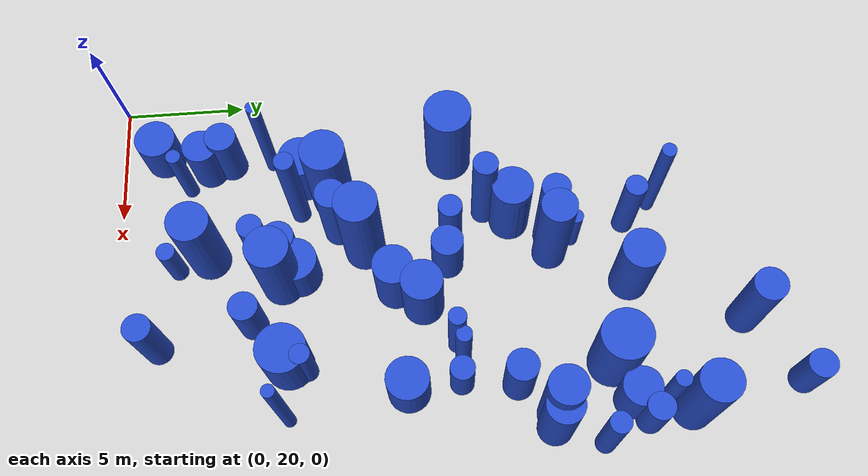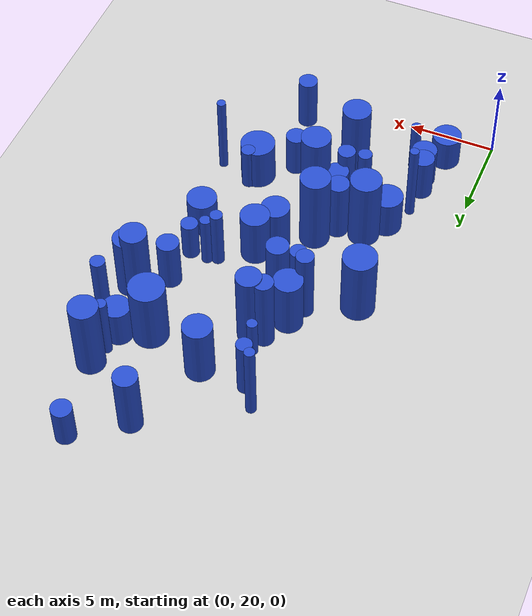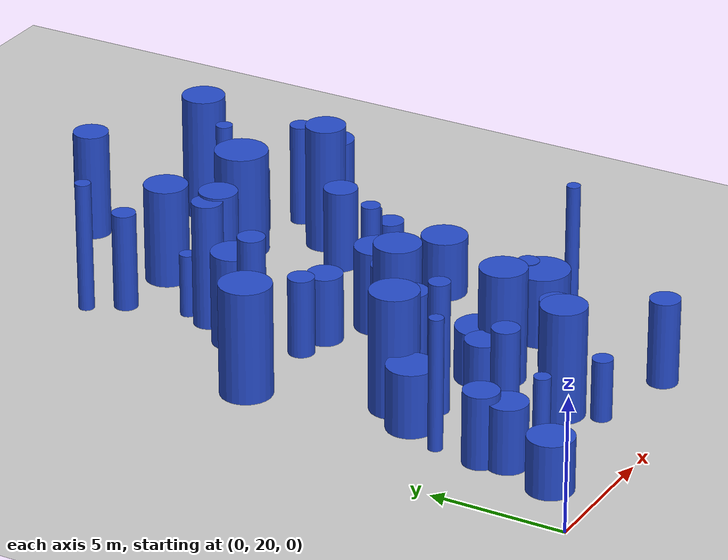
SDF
<sdf version="1.6">
 <world name="default">
  <model name="ground_plane">
   <static>1</static>
   <link name="link">
    <collision name="collision">
     <geometry><plane><normal>0 0 1</normal><size>100 100</size></plane></geometry>
     <surface><friction><ode><mu>100</mu><mu2>50</mu2></ode></friction></surface>
    </collision>
    <visual name="visual">
     <cast_shadows>0</cast_shadows>
     <geometry><plane><normal>0 0 1</normal><size>100 100</size></plane></geometry>
     <material>
      <script><uri>file://media/materials/scripts/gazebo.material</uri><name>Gazebo/Grey</name></script>
     </material>
    </visual>
   </link>
  </model>
  <model name="1">
   <static>0</static>
   <link name="link">
    <inertial>
     <mass>2</mass>
     <inertia><ixx>1.21264</ixx><ixy>0</ixy><ixz>0</ixz><iyy>1.21264</iyy><iyz>0</iyz><izz>0.729702</izz></inertia>
    </inertial>
    <collision name="collision">
     <geometry><cylinder><length>2.25538</length><radius>0.854226</radius></cylinder></geometry>
     <surface><contact><collide_without_contact>1</collide_without_contact></contact></surface>
    </collision>
    <visual name="visual">
     <geometry><cylinder><length>2.25538</length><radius>0.854226</radius></cylinder></geometry>
     <material>
      <script><uri>file://media/materials/scripts/gazebo.material</uri><name>Gazebo/Blue</name></script>
     </material>
    </visual>
    <gravity>0</gravity>
   </link>
   <pose>13.3804 31.6772 1.12769 0 -0 0</pose>
  </model>
  <model name="5">
   <static>0</static>
   <link name="link">
    <inertial>
     <mass>2</mass>
     <inertia><ixx>2.0117</ixx><ixy>0</ixy><ixz>0</ixz><iyy>2.0117</iyy><iyz>0</iyz><izz>0.692416</izz></inertia>
    </inertial>
    <collision name="collision">
     <geometry><cylinder><length>3.16116</length><radius>0.832116</radius></cylinder></geometry>
     <surface><contact><collide_without_contact>1</collide_without_contact></contact></surface>
    </collision>
    <visual name="visual">
     <geometry><cylinder><length>3.16116</length><radius>0.832116</radius></cylinder></geometry>
     <material>
      <script><uri>file://media/materials/scripts/gazebo.material</uri><name>Gazebo/Blue</name></script>
     </material>
    </visual>
    <gravity>0</gravity>
   </link>
   <pose>9.83556 32.4698 1.58058 0 -0 0</pose>
  </model>
  <model name="6">
   <static>0</static>
   <link name="link">
    <inertial>
     <mass>2</mass>
     <inertia><ixx>1.5744</ixx><ixy>0</ixy><ixz>0</ixz><iyy>1.5744</iyy><iyz>0</iyz><izz>0.233531</izz></inertia>
    </inertial>
    <collision name="collision">
     <geometry><cylinder><length>2.95733</length><radius>0.483251</radius></cylinder></geometry>
     <surface><contact><collide_without_contact>1</collide_without_contact></contact></surface>
    </collision>
    <visual name="visual">
     <geometry><cylinder><length>2.95733</length><radius>0.483251</radius></cylinder></geometry>
     <material>
      <script><uri>file://media/materials/scripts/gazebo.material</uri><name>Gazebo/Blue</name></script>
     </material>
    </visual>
    <gravity>0</gravity>
   </link>
   <pose>6.75771 33.7908 1.47867 0 -0 0</pose>
  </model>
  <model name="7">
   <static>0</static>
   <link name="link">
    <inertial>
     <mass>2</mass>
     <inertia><ixx>4.42007</ixx><ixy>0</ixy><ixz>0</ixz><iyy>4.42007</iyy><iyz>0</iyz><izz>0.725358</izz></inertia>
    </inertial>
    <collision name="collision">
     <geometry><cylinder><length>4.934</length><radius>0.85168</radius></cylinder></geometry>
     <surface><contact><collide_without_contact>1</collide_without_contact></contact></surface>
    </collision>
    <visual name="visual">
     <geometry><cylinder><length>4.934</length><radius>0.85168</radius></cylinder></geometry>
     <material>
      <script><uri>file://media/materials/scripts/gazebo.material</uri><name>Gazebo/Blue</name></script>
     </material>
    </visual>
    <gravity>0</gravity>
   </link>
   <pose>7.21815 30.2077 2.467 0 -0 0</pose>
  </model>
  <model name="10">
   <static>0</static>
   <link name="link">
    <inertial>
     <mass>2</mass>
     <inertia><ixx>1.24688</ixx><ixy>0</ixy><ixz>0</ixz><iyy>1.24688</iyy><iyz>0</iyz><izz>0.518703</izz></inertia>
    </inertial>
    <collision name="collision">
     <geometry><cylinder><length>2.43417</length><radius>0.72021</radius></cylinder></geometry>
     <surface><contact><collide_without_contact>1</collide_without_contact></contact></surface>
    </collision>
    <visual name="visual">
     <geometry><cylinder><length>2.43417</length><radius>0.72021</radius></cylinder></geometry>
     <material>
      <script><uri>file://media/materials/scripts/gazebo.material</uri><name>Gazebo/Blue</name></script>
     </material>
    </visual>
    <gravity>0</gravity>
   </link>
   <pose>3.05727 23.7254 1.21708 0 -0 0</pose>
  </model>
  <model name="17">
   <static>0</static>
   <link name="link">
    <inertial>
     <mass>2</mass>
     <inertia><ixx>1.23789</ixx><ixy>0</ixy><ixz>0</ixz><iyy>1.23789</iyy><iyz>0</iyz><izz>0.598154</izz></inertia>
    </inertial>
    <collision name="collision">
     <geometry><cylinder><length>2.37337</length><radius>0.773404</radius></cylinder></geometry>
     <surface><contact><collide_without_contact>1</collide_without_contact></contact></surface>
    </collision>
    <visual name="visual">
     <geometry><cylinder><length>2.37337</length><radius>0.773404</radius></cylinder></geometry>
     <material>
      <script><uri>file://media/materials/scripts/gazebo.material</uri><name>Gazebo/Blue</name></script>
     </material>
    </visual>
    <gravity>0</gravity>
   </link>
   <pose>14.3822 40.423 1.18668 0 -0 0</pose>
  </model>
  <model name="19">
   <static>0</static>
   <link name="link">
    <inertial>
     <mass>2</mass>
     <inertia><ixx>1.33118</ixx><ixy>0</ixy><ixz>0</ixz><iyy>1.33118</iyy><iyz>0</iyz><izz>0.426868</izz></inertia>
    </inertial>
    <collision name="collision">
     <geometry><cylinder><length>2.58969</length><radius>0.653352</radius></cylinder></geometry>
     <surface><contact><collide_without_contact>1</collide_without_contact></contact></surface>
    </collision>
    <visual name="visual">
     <geometry><cylinder><length>2.58969</length><radius>0.653352</radius></cylinder></geometry>
     <material>
      <script><uri>file://media/materials/scripts/gazebo.material</uri><name>Gazebo/Blue</name></script>
     </material>
    </visual>
    <gravity>0</gravity>
   </link>
   <pose>8.06166 33.5749 1.29484 0 -0 0</pose>
  </model>
  <model name="20">
   <static>0</static>
   <link name="link">
    <inertial>
     <mass>2</mass>
     <inertia>
      <ixx>1.75585</ixx>
      <ixy>0</ixy>
      <ixz>0</ixz>
      <iyy>1.75585</iyy>
      <iyz>0</iyz>
      <izz>0.0905961</izz>
     </inertia>
    </inertial>
    <collision name="collision">
     <geometry><cylinder><length>3.20364</length><radius>0.300992</radius></cylinder></geometry>
     <surface><contact><collide_without_contact>1</collide_without_contact></contact></surface>
    </collision>
    <visual name="visual">
     <geometry><cylinder><length>3.20364</length><radius>0.300992</radius></cylinder></geometry>
     <material>
      <script><uri>file://media/materials/scripts/gazebo.material</uri><name>Gazebo/Blue</name></script>
     </material>
    </visual>
    <gravity>0</gravity>
   </link>
   <pose>3.87578 22.8858 1.60182 0 -0 0</pose>
  </model>
  <model name="22">
   <static>0</static>
   <link name="link">
    <inertial>
     <mass>2</mass>
     <inertia>
      <ixx>0.996712</ixx>
      <ixy>0</ixy>
      <ixz>0</ixz>
      <iyy>0.996712</iyy>
      <iyz>0</iyz>
      <izz>0.087716</izz>
     </inertia>
    </inertial>
    <collision name="collision">
     <geometry><cylinder><length>2.39105</length><radius>0.296169</radius></cylinder></geometry>
     <surface><contact><collide_without_contact>1</collide_without_contact></contact></surface>
    </collision>
    <visual name="visual">
     <geometry><cylinder><length>2.39105</length><radius>0.296169</radius></cylinder></geometry>
     <material>
      <script><uri>file://media/materials/scripts/gazebo.material</uri><name>Gazebo/Blue</name></script>
     </material>
    </visual>
    <gravity>0</gravity>
   </link>
   <pose>7.34966 38.7949 1.19553 0 -0 0</pose>
  </model>
  <model name="28">
   <static>0</static>
   <link name="link">
    <inertial>
     <mass>2</mass>
     <inertia>
      <ixx>4.08418</ixx>
      <ixy>0</ixy>
      <ixz>0</ixz>
      <iyy>4.08418</iyy>
      <iyz>0</iyz>
      <izz>0.0857833</izz>
     </inertia>
    </inertial>
    <collision name="collision">
     <geometry><cylinder><length>4.9242</length><radius>0.292888</radius></cylinder></geometry>
     <surface><contact><collide_without_contact>1</collide_without_contact></contact></surface>
    </collision>
    <visual name="visual">
     <geometry><cylinder><length>4.9242</length><radius>0.292888</radius></cylinder></geometry>
     <material>
      <script><uri>file://media/materials/scripts/gazebo.material</uri><name>Gazebo/Blue</name></script>
     </material>
    </visual>
    <gravity>0</gravity>
   </link>
   <pose>5.98766 42.2378 2.4621 0 -0 0</pose>
  </model>
  <model name="29">
   <static>0</static>
   <link name="link">
    <inertial>
     <mass>2</mass>
     <inertia><ixx>1.08444</ixx><ixy>0</ixy><ixz>0</ixz><iyy>1.08444</iyy><iyz>0</iyz><izz>0.820187</izz></inertia>
    </inertial>
    <collision name="collision">
     <geometry><cylinder><length>2.01148</length><radius>0.905642</radius></cylinder></geometry>
     <surface><contact><collide_without_contact>1</collide_without_contact></contact></surface>
    </collision>
    <visual name="visual">
     <geometry><cylinder><length>2.01148</length><radius>0.905642</radius></cylinder></geometry>
     <material>
      <script><uri>file://media/materials/scripts/gazebo.material</uri><name>Gazebo/Blue</name></script>
     </material>
    </visual>
    <gravity>0</gravity>
   </link>
   <pose>8.17215 27.4661 1.00574 0 -0 0</pose>
  </model>
  <model name="36">
   <static>0</static>
   <link name="link">
    <inertial>
     <mass>2</mass>
     <inertia><ixx>1.02322</ixx><ixy>0</ixy><ixz>0</ixz><iyy>1.02322</iyy><iyz>0</iyz><izz>0.699364</izz></inertia>
    </inertial>
    <collision name="collision">
     <geometry><cylinder><length>2.01028</length><radius>0.83628</radius></cylinder></geometry>
     <surface><contact><collide_without_contact>1</collide_without_contact></contact></surface>
    </collision>
    <visual name="visual">
     <geometry><cylinder><length>2.01028</length><radius>0.83628</radius></cylinder></geometry>
     <material>
      <script><uri>file://media/materials/scripts/gazebo.material</uri><name>Gazebo/Blue</name></script>
     </material>
    </visual>
    <gravity>0</gravity>
   </link>
   <pose>2.3337 21.7478 1.00514 0 -0 0</pose>
  </model>
  <model name="39">
   <static>0</static>
   <link name="link">
    <inertial>
     <mass>2</mass>
     <inertia><ixx>2.41207</ixx><ixy>0</ixy><ixz>0</ixz><iyy>2.41207</iyy><iyz>0</iyz><izz>0.674875</izz></inertia>
    </inertial>
    <collision name="collision">
     <geometry><cylinder><length>3.52814</length><radius>0.821508</radius></cylinder></geometry>
     <surface><contact><collide_without_contact>1</collide_without_contact></contact></surface>
    </collision>
    <visual name="visual">
     <geometry><cylinder><length>3.52814</length><radius>0.821508</radius></cylinder></geometry>
     <material>
      <script><uri>file://media/materials/scripts/gazebo.material</uri><name>Gazebo/Blue</name></script>
     </material>
    </visual>
    <gravity>0</gravity>
   </link>
   <pose>6.34437 36.277 1.76407 0 -0 0</pose>
  </model>
  <model name="41">
   <static>0</static>
   <link name="link">
    <inertial>
     <mass>2</mass>
     <inertia>
      <ixx>2.58319</ixx>
      <ixy>0</ixy>
      <ixz>0</ixz>
      <iyy>2.58319</iyy>
      <iyz>0</iyz>
      <izz>0.0988008</izz>
     </inertia>
    </inertial>
    <collision name="collision">
     <geometry><cylinder><length>3.89907</length><radius>0.314326</radius></cylinder></geometry>
     <surface><contact><collide_without_contact>1</collide_without_contact></contact></surface>
    </collision>
    <visual name="visual">
     <geometry><cylinder><length>3.89907</length><radius>0.314326</radius></cylinder></geometry>
     <material>
      <script><uri>file://media/materials/scripts/gazebo.material</uri><name>Gazebo/Blue</name></script>
     </material>
    </visual>
    <gravity>0</gravity>
   </link>
   <pose>14.5714 41.5767 1.94954 0 -0 0</pose>
  </model>
  <model name="46">
   <static>0</static>
   <link name="link">
    <inertial>
     <mass>2</mass>
     <inertia><ixx>2.99386</ixx><ixy>0</ixy><ixz>0</ixz><iyy>2.99386</iyy><iyz>0</iyz><izz>0.435719</izz></inertia>
    </inertial>
    <collision name="collision">
     <geometry><cylinder><length>4.08118</length><radius>0.66009</radius></cylinder></geometry>
     <surface><contact><collide_without_contact>1</collide_without_contact></contact></surface>
    </collision>
    <visual name="visual">
     <geometry><cylinder><length>4.08118</length><radius>0.66009</radius></cylinder></geometry>
     <material>
      <script><uri>file://media/materials/scripts/gazebo.material</uri><name>Gazebo/Blue</name></script>
     </material>
    </visual>
    <gravity>0</gravity>
   </link>
   <pose>11.3429 45.3423 2.04059 0 -0 0</pose>
  </model>
  <model name="48">
   <static>0</static>
   <link name="link">
    <inertial>
     <mass>2</mass>
     <inertia><ixx>2.37656</ixx><ixy>0</ixy><ixz>0</ixz><iyy>2.37656</iyy><iyz>0</iyz><izz>0.127367</izz></inertia>
    </inertial>
    <collision name="collision">
     <geometry><cylinder><length>3.72522</length><radius>0.356886</radius></cylinder></geometry>
     <surface><contact><collide_without_contact>1</collide_without_contact></contact></surface>
    </collision>
    <visual name="visual">
     <geometry><cylinder><length>3.72522</length><radius>0.356886</radius></cylinder></geometry>
     <material>
      <script><uri>file://media/materials/scripts/gazebo.material</uri><name>Gazebo/Blue</name></script>
     </material>
    </visual>
    <gravity>0</gravity>
   </link>
   <pose>11.5725 33.7002 1.86261 0 -0 0</pose>
  </model>
  <model name="52">
   <static>0</static>
   <link name="link">
    <inertial>
     <mass>2</mass>
     <inertia><ixx>2.62274</ixx><ixy>0</ixy><ixz>0</ixz><iyy>2.62274</iyy><iyz>0</iyz><izz>0.169861</izz></inertia>
    </inertial>
    <collision name="collision">
     <geometry><cylinder><length>3.90216</length><radius>0.412142</radius></cylinder></geometry>
     <surface><contact><collide_without_contact>1</collide_without_contact></contact></surface>
    </collision>
    <visual name="visual">
     <geometry><cylinder><length>3.90216</length><radius>0.412142</radius></cylinder></geometry>
     <material>
      <script><uri>file://media/materials/scripts/gazebo.material</uri><name>Gazebo/Blue</name></script>
     </material>
    </visual>
    <gravity>0</gravity>
   </link>
   <pose>15.9682 39.1143 1.95108 0 -0 0</pose>
  </model>
  <model name="56">
   <static>0</static>
   <link name="link">
    <inertial>
     <mass>2</mass>
     <inertia><ixx>3.59824</ixx><ixy>0</ixy><ixz>0</ixz><iyy>3.59824</iyy><iyz>0</iyz><izz>0.250935</izz></inertia>
    </inertial>
    <collision name="collision">
     <geometry><cylinder><length>4.56471</length><radius>0.500934</radius></cylinder></geometry>
     <surface><contact><collide_without_contact>1</collide_without_contact></contact></surface>
    </collision>
    <visual name="visual">
     <geometry><cylinder><length>4.56471</length><radius>0.500934</radius></cylinder></geometry>
     <material>
      <script><uri>file://media/materials/scripts/gazebo.material</uri><name>Gazebo/Blue</name></script>
     </material>
    </visual>
    <gravity>0</gravity>
   </link>
   <pose>5.82661 35.2325 2.28236 0 -0 0</pose>
  </model>
  <model name="58">
   <static>0</static>
   <link name="link">
    <inertial>
     <mass>2</mass>
     <inertia>
      <ixx>0.949847</ixx>
      <ixy>0</ixy>
      <ixz>0</ixz>
      <iyy>0.949847</iyy>
      <iyz>0</iyz>
      <izz>0.437259</izz>
     </inertia>
    </inertial>
    <collision name="collision">
     <geometry><cylinder><length>2.09459</length><radius>0.661256</radius></cylinder></geometry>
     <surface><contact><collide_without_contact>1</collide_without_contact></contact></surface>
    </collision>
    <visual name="visual">
     <geometry><cylinder><length>2.09459</length><radius>0.661256</radius></cylinder></geometry>
     <material>
      <script><uri>file://media/materials/scripts/gazebo.material</uri><name>Gazebo/Blue</name></script>
     </material>
    </visual>
    <gravity>0</gravity>
   </link>
   <pose>7.17508 26.8264 1.0473 0 -0 0</pose>
  </model>
  <model name="67">
   <static>0</static>
   <link name="link">
    <inertial>
     <mass>2</mass>
     <inertia><ixx>1.85481</ixx><ixy>0</ixy><ixz>0</ixz><iyy>1.85481</iyy><iyz>0</iyz><izz>0.656961</izz></inertia>
    </inertial>
    <collision name="collision">
     <geometry><cylinder><length>3.02622</length><radius>0.810531</radius></cylinder></geometry>
     <surface><contact><collide_without_contact>1</collide_without_contact></contact></surface>
    </collision>
    <visual name="visual">
     <geometry><cylinder><length>3.02622</length><radius>0.810531</radius></cylinder></geometry>
     <material>
      <script><uri>file://media/materials/scripts/gazebo.material</uri><name>Gazebo/Blue</name></script>
     </material>
    </visual>
    <gravity>0</gravity>
   </link>
   <pose>9.07332 31.391 1.51311 0 -0 0</pose>
  </model>
  <model name="74">
   <static>0</static>
   <link name="link">
    <inertial>
     <mass>2</mass>
     <inertia><ixx>4.12328</ixx><ixy>0</ixy><ixz>0</ixz><iyy>4.12328</iyy><iyz>0</iyz><izz>0.560126</izz></inertia>
    </inertial>
    <collision name="collision">
     <geometry><cylinder><length>4.80201</length><radius>0.748416</radius></cylinder></geometry>
     <surface><contact><collide_without_contact>1</collide_without_contact></contact></surface>
    </collision>
    <visual name="visual">
     <geometry><cylinder><length>4.80201</length><radius>0.748416</radius></cylinder></geometry>
     <material>
      <script><uri>file://media/materials/scripts/gazebo.material</uri><name>Gazebo/Blue</name></script>
     </material>
    </visual>
    <gravity>0</gravity>
   </link>
   <pose>14.6995 37.3284 2.40101 0 -0 0</pose>
  </model>
  <model name="75">
   <static>0</static>
   <link name="link">
    <inertial>
     <mass>2</mass>
     <inertia><ixx>1.89918</ixx><ixy>0</ixy><ixz>0</ixz><iyy>1.89918</iyy><iyz>0</iyz><izz>0.308256</izz></inertia>
    </inertial>
    <collision name="collision">
     <geometry><cylinder><length>3.23579</length><radius>0.555208</radius></cylinder></geometry>
     <surface><contact><collide_without_contact>1</collide_without_contact></contact></surface>
    </collision>
    <visual name="visual">
     <geometry><cylinder><length>3.23579</length><radius>0.555208</radius></cylinder></geometry>
     <material>
      <script><uri>file://media/materials/scripts/gazebo.material</uri><name>Gazebo/Blue</name></script>
     </material>
    </visual>
    <gravity>0</gravity>
   </link>
   <pose>10.9513 21.7728 1.61789 0 -0 0</pose>
  </model>
  <model name="109">
   <static>0</static>
   <link name="link">
    <inertial>
     <mass>2</mass>
     <inertia><ixx>1.35394</ixx><ixy>0</ixy><ixz>0</ixz><iyy>1.35394</iyy><iyz>0</iyz><izz>0.777364</izz></inertia>
    </inertial>
    <collision name="collision">
     <geometry><cylinder><length>2.40656</length><radius>0.881682</radius></cylinder></geometry>
     <surface><contact><collide_without_contact>1</collide_without_contact></contact></surface>
    </collision>
    <visual name="visual">
     <geometry><cylinder><length>2.40656</length><radius>0.881682</radius></cylinder></geometry>
     <material>
      <script><uri>file://media/materials/scripts/gazebo.material</uri><name>Gazebo/Blue</name></script>
     </material>
    </visual>
    <gravity>0</gravity>
   </link>
   <pose>3.8228 27.8164 1.20328 0 -0 0</pose>
  </model>
  <model name="111">
   <static>0</static>
   <link name="link">
    <inertial>
     <mass>2</mass>
     <inertia><ixx>1.44019</ixx><ixy>0</ixy><ixz>0</ixz><iyy>1.44019</iyy><iyz>0</iyz><izz>0.418293</izz></inertia>
    </inertial>
    <collision name="collision">
     <geometry><cylinder><length>2.71777</length><radius>0.646756</radius></cylinder></geometry>
     <surface><contact><collide_without_contact>1</collide_without_contact></contact></surface>
    </collision>
    <visual name="visual">
     <geometry><cylinder><length>2.71777</length><radius>0.646756</radius></cylinder></geometry>
     <material>
      <script><uri>file://media/materials/scripts/gazebo.material</uri><name>Gazebo/Blue</name></script>
     </material>
    </visual>
    <gravity>0</gravity>
   </link>
   <pose>2.84721 24.6218 1.35889 0 -0 0</pose>
  </model>
  <model name="117">
   <static>0</static>
   <link name="link">
    <inertial>
     <mass>2</mass>
     <inertia>
      <ixx>4.11227</ixx>
      <ixy>0</ixy>
      <ixz>0</ixz>
      <iyy>4.11227</iyy>
      <iyz>0</iyz>
      <izz>0.0692889</izz>
     </inertia>
    </inertial>
    <collision name="collision">
     <geometry><cylinder><length>4.94629</length><radius>0.263228</radius></cylinder></geometry>
     <surface><contact><collide_without_contact>1</collide_without_contact></contact></surface>
    </collision>
    <visual name="visual">
     <geometry><cylinder><length>4.94629</length><radius>0.263228</radius></cylinder></geometry>
     <material>
      <script><uri>file://media/materials/scripts/gazebo.material</uri><name>Gazebo/Blue</name></script>
     </material>
    </visual>
    <gravity>0</gravity>
   </link>
   <pose>2.90857 26.37 2.47314 0 -0 0</pose>
  </model>
  <model name="119">
   <static>0</static>
   <link name="link">
    <inertial>
     <mass>2</mass>
     <inertia><ixx>2.38078</ixx><ixy>0</ixy><ixz>0</ixz><iyy>2.38078</iyy><iyz>0</iyz><izz>0.195556</izz></inertia>
    </inertial>
    <collision name="collision">
     <geometry><cylinder><length>3.70108</length><radius>0.442218</radius></cylinder></geometry>
     <surface><contact><collide_without_contact>1</collide_without_contact></contact></surface>
    </collision>
    <visual name="visual">
     <geometry><cylinder><length>3.70108</length><radius>0.442218</radius></cylinder></geometry>
     <material>
      <script><uri>file://media/materials/scripts/gazebo.material</uri><name>Gazebo/Blue</name></script>
     </material>
    </visual>
    <gravity>0</gravity>
   </link>
   <pose>6.79355 41.0742 1.85054 0 -0 0</pose>
  </model>
  <model name="126">
   <static>0</static>
   <link name="link">
    <inertial>
     <mass>2</mass>
     <inertia><ixx>3.16923</ixx><ixy>0</ixy><ixz>0</ixz><iyy>3.16923</iyy><iyz>0</iyz><izz>0.99439</izz></inertia>
    </inertial>
    <collision name="collision">
     <geometry><cylinder><length>4.00402</length><radius>0.997191</radius></cylinder></geometry>
     <surface><contact><collide_without_contact>1</collide_without_contact></contact></surface>
    </collision>
    <visual name="visual">
     <geometry><cylinder><length>4.00402</length><radius>0.997191</radius></cylinder></geometry>
     <material>
      <script><uri>file://media/materials/scripts/gazebo.material</uri><name>Gazebo/Blue</name></script>
     </material>
    </visual>
    <gravity>0</gravity>
   </link>
   <pose>12.8116 39.7959 2.00201 0 -0 0</pose>
  </model>
  <model name="143">
   <static>0</static>
   <link name="link">
    <inertial>
     <mass>2</mass>
     <inertia><ixx>1.28938</ixx><ixy>0</ixy><ixz>0</ixz><iyy>1.28938</iyy><iyz>0</iyz><izz>0.344752</izz></inertia>
    </inertial>
    <collision name="collision">
     <geometry><cylinder><length>2.58882</length><radius>0.587156</radius></cylinder></geometry>
     <surface><contact><collide_without_contact>1</collide_without_contact></contact></surface>
    </collision>
    <visual name="visual">
     <geometry><cylinder><length>2.58882</length><radius>0.587156</radius></cylinder></geometry>
     <material>
      <script><uri>file://media/materials/scripts/gazebo.material</uri><name>Gazebo/Blue</name></script>
     </material>
    </visual>
    <gravity>0</gravity>
   </link>
   <pose>10.178 25.574 1.29441 0 -0 0</pose>
  </model>
  <model name="144">
   <static>0</static>
   <link name="link">
    <inertial>
     <mass>2</mass>
     <inertia><ixx>1.21797</ixx><ixy>0</ixy><ixz>0</ixz><iyy>1.21797</iyy><iyz>0</iyz><izz>0.296682</izz></inertia>
    </inertial>
    <collision name="collision">
     <geometry><cylinder><length>2.53334</length><radius>0.544685</radius></cylinder></geometry>
     <surface><contact><collide_without_contact>1</collide_without_contact></contact></surface>
    </collision>
    <visual name="visual">
     <geometry><cylinder><length>2.53334</length><radius>0.544685</radius></cylinder></geometry>
     <material>
      <script><uri>file://media/materials/scripts/gazebo.material</uri><name>Gazebo/Blue</name></script>
     </material>
    </visual>
    <gravity>0</gravity>
   </link>
   <pose>15.2183 40.9566 1.26667 0 -0 0</pose>
  </model>
  <model name="145">
   <static>0</static>
   <link name="link">
    <inertial>
     <mass>2</mass>
     <inertia><ixx>1.72</ixx><ixy>0</ixy><ixz>0</ixz><iyy>1.72</iyy><iyz>0</iyz><izz>0.363739</izz></inertia>
    </inertial>
    <collision name="collision">
     <geometry><cylinder><length>3.03789</length><radius>0.603108</radius></cylinder></geometry>
     <surface><contact><collide_without_contact>1</collide_without_contact></contact></surface>
    </collision>
    <visual name="visual">
     <geometry><cylinder><length>3.03789</length><radius>0.603108</radius></cylinder></geometry>
     <material>
      <script><uri>file://media/materials/scripts/gazebo.material</uri><name>Gazebo/Blue</name></script>
     </material>
    </visual>
    <gravity>0</gravity>
   </link>
   <pose>6.54316 36.3832 1.51895 0 -0 0</pose>
  </model>
  <model name="151">
   <static>0</static>
   <link name="link">
    <inertial>
     <mass>2</mass>
     <inertia><ixx>4.1732</ixx><ixy>0</ixy><ixz>0</ixz><iyy>4.1732</iyy><iyz>0</iyz><izz>0.497658</izz></inertia>
    </inertial>
    <collision name="collision">
     <geometry><cylinder><length>4.85245</length><radius>0.705449</radius></cylinder></geometry>
     <surface><contact><collide_without_contact>1</collide_without_contact></contact></surface>
    </collision>
    <visual name="visual">
     <geometry><cylinder><length>4.85245</length><radius>0.705449</radius></cylinder></geometry>
     <material>
      <script><uri>file://media/materials/scripts/gazebo.material</uri><name>Gazebo/Blue</name></script>
     </material>
    </visual>
    <gravity>0</gravity>
   </link>
   <pose>7.91534 37.8162 2.42622 0 -0 0</pose>
  </model>
  <model name="153">
   <static>0</static>
   <link name="link">
    <inertial>
     <mass>2</mass>
     <inertia>
      <ixx>0.942589</ixx>
      <ixy>0</ixy>
      <ixz>0</ixz>
      <iyy>0.942589</iyy>
      <iyz>0</iyz>
      <izz>0.138799</izz>
     </inertia>
    </inertial>
    <collision name="collision">
     <geometry><cylinder><length>2.28892</length><radius>0.372557</radius></cylinder></geometry>
     <surface><contact><collide_without_contact>1</collide_without_contact></contact></surface>
    </collision>
    <visual name="visual">
     <geometry><cylinder><length>2.28892</length><radius>0.372557</radius></cylinder></geometry>
     <material>
      <script><uri>file://media/materials/scripts/gazebo.material</uri><name>Gazebo/Blue</name></script>
     </material>
    </visual>
    <gravity>0</gravity>
   </link>
   <pose>7.58174 22.4658 1.14446 0 -0 0</pose>
  </model>
  <model name="154">
   <static>0</static>
   <link name="link">
    <inertial>
     <mass>2</mass>
     <inertia><ixx>4.12797</ixx><ixy>0</ixy><ixz>0</ixz><iyy>4.12797</iyy><iyz>0</iyz><izz>0.151863</izz></inertia>
    </inertial>
    <collision name="collision">
     <geometry><cylinder><length>4.93075</length><radius>0.389697</radius></cylinder></geometry>
     <surface><contact><collide_without_contact>1</collide_without_contact></contact></surface>
    </collision>
    <visual name="visual">
     <geometry><cylinder><length>4.93075</length><radius>0.389697</radius></cylinder></geometry>
     <material>
      <script><uri>file://media/materials/scripts/gazebo.material</uri><name>Gazebo/Blue</name></script>
     </material>
    </visual>
    <gravity>0</gravity>
   </link>
   <pose>5.33287 27.5633 2.46537 0 -0 0</pose>
  </model>
  <model name="155">
   <static>0</static>
   <link name="link">
    <inertial>
     <mass>2</mass>
     <inertia><ixx>3.02453</ixx><ixy>0</ixy><ixz>0</ixz><iyy>3.02453</iyy><iyz>0</iyz><izz>0.528307</izz></inertia>
    </inertial>
    <collision name="collision">
     <geometry><cylinder><length>4.06967</length><radius>0.726847</radius></cylinder></geometry>
     <surface><contact><collide_without_contact>1</collide_without_contact></contact></surface>
    </collision>
    <visual name="visual">
     <geometry><cylinder><length>4.06967</length><radius>0.726847</radius></cylinder></geometry>
     <material>
      <script><uri>file://media/materials/scripts/gazebo.material</uri><name>Gazebo/Blue</name></script>
     </material>
    </visual>
    <gravity>0</gravity>
   </link>
   <pose>15.2238 37.2459 2.03484 0 -0 0</pose>
  </model>
  <model name="156">
   <static>0</static>
   <link name="link">
    <inertial>
     <mass>2</mass>
     <inertia>
      <ixx>4.18262</ixx>
      <ixy>0</ixy>
      <ixz>0</ixz>
      <iyy>4.18262</iyy>
      <iyz>0</iyz>
      <izz>0.0641521</izz>
     </inertia>
    </inertial>
    <collision name="collision">
     <geometry><cylinder><length>4.99032</length><radius>0.253283</radius></cylinder></geometry>
     <surface><contact><collide_without_contact>1</collide_without_contact></contact></surface>
    </collision>
    <visual name="visual">
     <geometry><cylinder><length>4.99032</length><radius>0.253283</radius></cylinder></geometry>
     <material>
      <script><uri>file://media/materials/scripts/gazebo.material</uri><name>Gazebo/Blue</name></script>
     </material>
    </visual>
    <gravity>0</gravity>
   </link>
   <pose>14.1669 26.9517 2.49516 0 -0 0</pose>
  </model>
  <model name="163">
   <static>0</static>
   <link name="link">
    <inertial>
     <mass>2</mass>
     <inertia><ixx>1.67128</ixx><ixy>0</ixy><ixz>0</ixz><iyy>1.67128</iyy><iyz>0</iyz><izz>0.985146</izz></inertia>
    </inertial>
    <collision name="collision">
     <geometry><cylinder><length>2.65937</length><radius>0.992545</radius></cylinder></geometry>
     <surface><contact><collide_without_contact>1</collide_without_contact></contact></surface>
    </collision>
    <visual name="visual">
     <geometry><cylinder><length>2.65937</length><radius>0.992545</radius></cylinder></geometry>
     <material>
      <script><uri>file://media/materials/scripts/gazebo.material</uri><name>Gazebo/Blue</name></script>
     </material>
    </visual>
    <gravity>0</gravity>
   </link>
   <pose>11.9619 26.9951 1.32968 0 -0 0</pose>
  </model>
  <model name="171">
   <static>0</static>
   <link name="link">
    <inertial>
     <mass>2</mass>
     <inertia><ixx>1.28355</ixx><ixy>0</ixy><ixz>0</ixz><iyy>1.28355</iyy><iyz>0</iyz><izz>0.163522</izz></inertia>
    </inertial>
    <collision name="collision">
     <geometry><cylinder><length>2.68528</length><radius>0.404379</radius></cylinder></geometry>
     <surface><contact><collide_without_contact>1</collide_without_contact></contact></surface>
    </collision>
    <visual name="visual">
     <geometry><cylinder><length>2.68528</length><radius>0.404379</radius></cylinder></geometry>
     <material>
      <script><uri>file://media/materials/scripts/gazebo.material</uri><name>Gazebo/Blue</name></script>
     </material>
    </visual>
    <gravity>0</gravity>
   </link>
   <pose>12.2518 27.7163 1.34264 0 -0 0</pose>
  </model>
  <model name="174">
   <static>0</static>
   <link name="link">
    <inertial>
     <mass>2</mass>
     <inertia><ixx>1.84606</ixx><ixy>0</ixy><ixz>0</ixz><iyy>1.84606</iyy><iyz>0</iyz><izz>0.100943</izz></inertia>
    </inertial>
    <collision name="collision">
     <geometry><cylinder><length>3.2823</length><radius>0.317715</radius></cylinder></geometry>
     <surface><contact><collide_without_contact>1</collide_without_contact></contact></surface>
    </collision>
    <visual name="visual">
     <geometry><cylinder><length>3.2823</length><radius>0.317715</radius></cylinder></geometry>
     <material>
      <script><uri>file://media/materials/scripts/gazebo.material</uri><name>Gazebo/Blue</name></script>
     </material>
    </visual>
    <gravity>0</gravity>
   </link>
   <pose>12.1348 33.9097 1.64115 0 -0 0</pose>
  </model>
  <model name="189">
   <static>0</static>
   <link name="link">
    <inertial>
     <mass>2</mass>
     <inertia><ixx>2.68004</ixx><ixy>0</ixy><ixz>0</ixz><iyy>2.68004</iyy><iyz>0</iyz><izz>0.666747</izz></inertia>
    </inertial>
    <collision name="collision">
     <geometry><cylinder><length>3.75233</length><radius>0.816545</radius></cylinder></geometry>
     <surface><contact><collide_without_contact>1</collide_without_contact></contact></surface>
    </collision>
    <visual name="visual">
     <geometry><cylinder><length>3.75233</length><radius>0.816545</radius></cylinder></geometry>
     <material>
      <script><uri>file://media/materials/scripts/gazebo.material</uri><name>Gazebo/Blue</name></script>
     </material>
    </visual>
    <gravity>0</gravity>
   </link>
   <pose>9.43595 40.9496 1.87617 0 -0 0</pose>
  </model>
  <model name="194">
   <static>0</static>
   <link name="link">
    <inertial>
     <mass>2</mass>
     <inertia><ixx>4.05304</ixx><ixy>0</ixy><ixz>0</ixz><iyy>4.05304</iyy><iyz>0</iyz><izz>0.652866</izz></inertia>
    </inertial>
    <collision name="collision">
     <geometry><cylinder><length>4.7286</length><radius>0.808001</radius></cylinder></geometry>
     <surface><contact><collide_without_contact>1</collide_without_contact></contact></surface>
    </collision>
    <visual name="visual">
     <geometry><cylinder><length>4.7286</length><radius>0.808001</radius></cylinder></geometry>
     <material>
      <script><uri>file://media/materials/scripts/gazebo.material</uri><name>Gazebo/Blue</name></script>
     </material>
    </visual>
    <gravity>0</gravity>
   </link>
   <pose>14.9409 42.6739 2.3643 0 -0 0</pose>
  </model>
  <model name="195">
   <static>0</static>
   <link name="link">
    <inertial>
     <mass>2</mass>
     <inertia><ixx>2.5919</ixx><ixy>0</ixy><ixz>0</ixz><iyy>2.5919</iyy><iyz>0</iyz><izz>0.39216</izz></inertia>
    </inertial>
    <collision name="collision">
     <geometry><cylinder><length>3.79142</length><radius>0.626227</radius></cylinder></geometry>
     <surface><contact><collide_without_contact>1</collide_without_contact></contact></surface>
    </collision>
    <visual name="visual">
     <geometry><cylinder><length>3.79142</length><radius>0.626227</radius></cylinder></geometry>
     <material>
      <script><uri>file://media/materials/scripts/gazebo.material</uri><name>Gazebo/Blue</name></script>
     </material>
    </visual>
    <gravity>0</gravity>
   </link>
   <pose>6.25732 29.1597 1.89571 0 -0 0</pose>
  </model>
  <model name="213">
   <static>0</static>
   <link name="link">
    <inertial>
     <mass>2</mass>
     <inertia><ixx>3.94195</ixx><ixy>0</ixy><ixz>0</ixz><iyy>3.94195</iyy><iyz>0</iyz><izz>0.316712</izz></inertia>
    </inertial>
    <collision name="collision">
     <geometry><cylinder><length>4.76462</length><radius>0.562771</radius></cylinder></geometry>
     <surface><contact><collide_without_contact>1</collide_without_contact></contact></surface>
    </collision>
    <visual name="visual">
     <geometry><cylinder><length>4.76462</length><radius>0.562771</radius></cylinder></geometry>
     <material>
      <script><uri>file://media/materials/scripts/gazebo.material</uri><name>Gazebo/Blue</name></script>
     </material>
    </visual>
    <gravity>0</gravity>
   </link>
   <pose>7.11286 37.7974 2.38231 0 -0 0</pose>
  </model>
  <model name="219">
   <static>0</static>
   <link name="link">
    <inertial>
     <mass>2</mass>
     <inertia><ixx>3.42405</ixx><ixy>0</ixy><ixz>0</ixz><iyy>3.42405</iyy><iyz>0</iyz><izz>0.734476</izz></inertia>
    </inertial>
    <collision name="collision">
     <geometry><cylinder><length>4.28263</length><radius>0.857016</radius></cylinder></geometry>
     <surface><contact><collide_without_contact>1</collide_without_contact></contact></surface>
    </collision>
    <visual name="visual">
     <geometry><cylinder><length>4.28263</length><radius>0.857016</radius></cylinder></geometry>
     <material>
      <script><uri>file://media/materials/scripts/gazebo.material</uri><name>Gazebo/Blue</name></script>
     </material>
    </visual>
    <gravity>0</gravity>
   </link>
   <pose>8.51042 26.7746 2.14131 0 -0 0</pose>
  </model>
  <model name="223">
   <static>0</static>
   <link name="link">
    <inertial>
     <mass>2</mass>
     <inertia><ixx>1.49806</ixx><ixy>0</ixy><ixz>0</ixz><iyy>1.49806</iyy><iyz>0</iyz><izz>0.260136</izz></inertia>
    </inertial>
    <collision name="collision">
     <geometry><cylinder><length>2.86495</length><radius>0.510035</radius></cylinder></geometry>
     <surface><contact><collide_without_contact>1</collide_without_contact></contact></surface>
    </collision>
    <visual name="visual">
     <geometry><cylinder><length>2.86495</length><radius>0.510035</radius></cylinder></geometry>
     <material>
      <script><uri>file://media/materials/scripts/gazebo.material</uri><name>Gazebo/Blue</name></script>
     </material>
    </visual>
    <gravity>0</gravity>
   </link>
   <pose>6.98775 25.867 1.43247 0 -0 0</pose>
  </model>
  <model name="224">
   <static>0</static>
   <link name="link">
    <inertial>
     <mass>2</mass>
     <inertia><ixx>1.81232</ixx><ixy>0</ixy><ixz>0</ixz><iyy>1.81232</iyy><iyz>0</iyz><izz>0.395815</izz></inertia>
    </inertial>
    <collision name="collision">
     <geometry><cylinder><length>3.11231</length><radius>0.629138</radius></cylinder></geometry>
     <surface><contact><collide_without_contact>1</collide_without_contact></contact></surface>
    </collision>
    <visual name="visual">
     <geometry><cylinder><length>3.11231</length><radius>0.629138</radius></cylinder></geometry>
     <material>
      <script><uri>file://media/materials/scripts/gazebo.material</uri><name>Gazebo/Blue</name></script>
     </material>
    </visual>
    <gravity>0</gravity>
   </link>
   <pose>13.4233 35.9812 1.55615 0 -0 0</pose>
  </model>
  <model name="225">
   <static>0</static>
   <link name="link">
    <inertial>
     <mass>2</mass>
     <inertia><ixx>1.09095</ixx><ixy>0</ixy><ixz>0</ixz><iyy>1.09095</iyy><iyz>0</iyz><izz>0.236588</izz></inertia>
    </inertial>
    <collision name="collision">
     <geometry><cylinder><length>2.41576</length><radius>0.486403</radius></cylinder></geometry>
     <surface><contact><collide_without_contact>1</collide_without_contact></contact></surface>
    </collision>
    <visual name="visual">
     <geometry><cylinder><length>2.41576</length><radius>0.486403</radius></cylinder></geometry>
     <material>
      <script><uri>file://media/materials/scripts/gazebo.material</uri><name>Gazebo/Blue</name></script>
     </material>
    </visual>
    <gravity>0</gravity>
   </link>
   <pose>13.1849 33.7729 1.20788 0 -0 0</pose>
  </model>
  <model name="227">
   <static>0</static>
   <link name="link">
    <inertial>
     <mass>2</mass>
     <inertia><ixx>3.2296</ixx><ixy>0</ixy><ixz>0</ixz><iyy>3.2296</iyy><iyz>0</iyz><izz>0.688861</izz></inertia>
    </inertial>
    <collision name="collision">
     <geometry><cylinder><length>4.16065</length><radius>0.829977</radius></cylinder></geometry>
     <surface><contact><collide_without_contact>1</collide_without_contact></contact></surface>
    </collision>
    <visual name="visual">
     <geometry><cylinder><length>4.16065</length><radius>0.829977</radius></cylinder></geometry>
     <material>
      <script><uri>file://media/materials/scripts/gazebo.material</uri><name>Gazebo/Blue</name></script>
     </material>
    </visual>
    <gravity>0</gravity>
   </link>
   <pose>7.18961 23.7781 2.08033 0 -0 0</pose>
  </model>
  <model name="229">
   <static>0</static>
   <link name="link">
    <inertial>
     <mass>2</mass>
     <inertia><ixx>3.80264</ixx><ixy>0</ixy><ixz>0</ixz><iyy>3.80264</iyy><iyz>0</iyz><izz>0.790646</izz></inertia>
    </inertial>
    <collision name="collision">
     <geometry><cylinder><length>4.5215</length><radius>0.889183</radius></cylinder></geometry>
     <surface><contact><collide_without_contact>1</collide_without_contact></contact></surface>
    </collision>
    <visual name="visual">
     <geometry><cylinder><length>4.5215</length><radius>0.889183</radius></cylinder></geometry>
     <material>
      <script><uri>file://media/materials/scripts/gazebo.material</uri><name>Gazebo/Blue</name></script>
     </material>
    </visual>
    <gravity>0</gravity>
   </link>
   <pose>4.7447 28.9707 2.26075 0 -0 0</pose>
  </model>
  <model name="230">
   <static>0</static>
   <link name="link">
    <inertial>
     <mass>2</mass>
     <inertia><ixx>3.41494</ixx><ixy>0</ixy><ixz>0</ixz><iyy>3.41494</iyy><iyz>0</iyz><izz>0.90543</izz></inertia>
    </inertial>
    <collision name="collision">
     <geometry><cylinder><length>4.21584</length><radius>0.951541</radius></cylinder></geometry>
     <surface><contact><collide_without_contact>1</collide_without_contact></contact></surface>
    </collision>
    <visual name="visual">
     <geometry><cylinder><length>4.21584</length><radius>0.951541</radius></cylinder></geometry>
     <material>
      <script><uri>file://media/materials/scripts/gazebo.material</uri><name>Gazebo/Blue</name></script>
     </material>
    </visual>
    <gravity>0</gravity>
   </link>
   <pose>3.2388 33.946 2.10792 0 -0 0</pose>
  </model>
  <model name="242">
   <static>0</static>
   <link name="link">
    <inertial>
     <mass>2</mass>
     <inertia><ixx>1.17404</ixx><ixy>0</ixy><ixz>0</ixz><iyy>1.17404</iyy><iyz>0</iyz><izz>0.329321</izz></inertia>
    </inertial>
    <collision name="collision">
     <geometry><cylinder><length>2.46095</length><radius>0.573865</radius></cylinder></geometry>
     <surface><contact><collide_without_contact>1</collide_without_contact></contact></surface>
    </collision>
    <visual name="visual">
     <geometry><cylinder><length>2.46095</length><radius>0.573865</radius></cylinder></geometry>
     <material>
      <script><uri>file://media/materials/scripts/gazebo.material</uri><name>Gazebo/Blue</name></script>
     </material>
    </visual>
    <gravity>0</gravity>
   </link>
   <pose>14.0639 47.271 1.23048 0 -0 0</pose>
  </model>
 </world>
</sdf>
